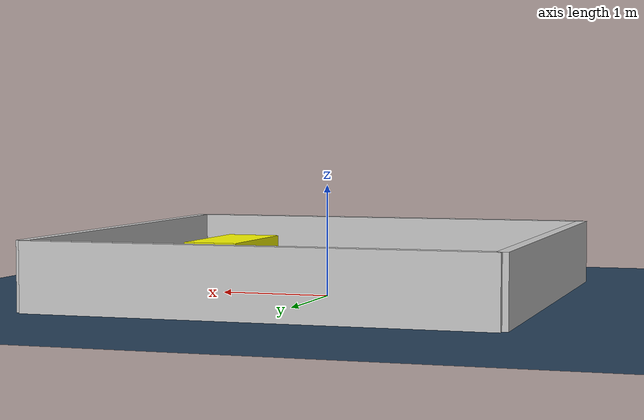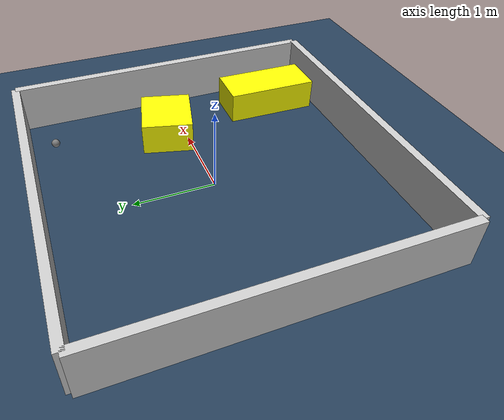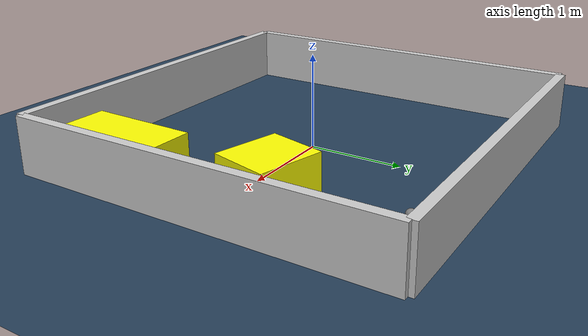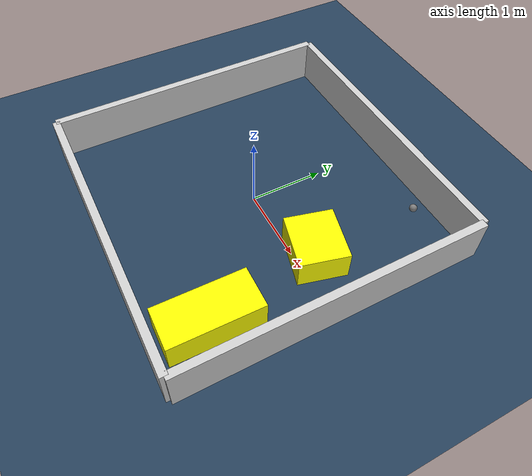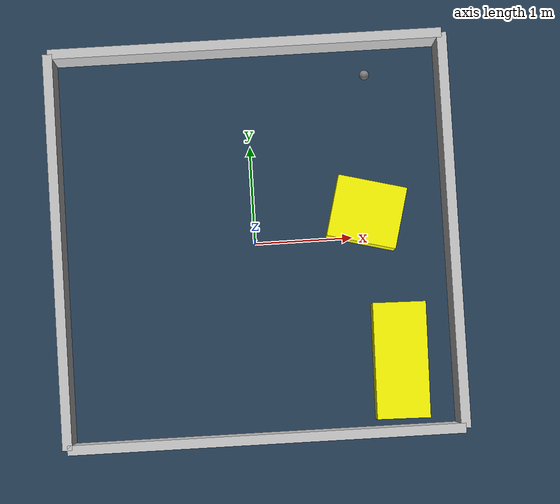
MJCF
<?xml version="1.0" ?>
<mujoco model="generated_environment">
  <option timestep="0.01" integrator="RK4" cone="elliptic"/>
  <default>
    <geom density="1"/>
  </default>
  <asset>
    <texture builtin="gradient" height="3072" rgb1="0.3 0.5 0.7" rgb2="0 0 0" type="skybox" width="512"/>
    <texture builtin="checker" height="300" mark="edge" markrgb="0.8 0.8 0.8" name="groundplane" rgb1="0.2 0.3 0.4" rgb2="0.1 0.2 0.3" type="2d" width="300"/>
    <material name="groundplane" reflectance="0.2" texrepeat="5 5" texture="groundplane" texuniform="true"/>
    <material name="robot" rgba="0.0 1.0 0.0 1"/>
  </asset>
  <worldbody>
    <light dir="0 0 -1" directional="true" pos="0 0 1.5"/>
    <geom condim="4" friction="1.0 0.005 0.001" material="groundplane" name="floor" size="0 0 0.05" type="plane"/>
    <body name="walls">
      <geom name="wall_1" condim="4" pos="-2.0 0.0 0.3" rgba="0.800000011920929 0.800000011920929 0.800000011920929 1.0" size="0.05 2.0 0.3" type="box"/>
      <geom name="wall_2" condim="4" pos="2.0 0.0 0.3" rgba="0.800000011920929 0.800000011920929 0.800000011920929 1.0" size="0.05 2.0 0.3" type="box"/>
      <geom name="wall_3" condim="4" pos="0.0 -2.0 0.3" rgba="0.800000011920929 0.800000011920929 0.800000011920929 1.0" size="2.0 0.05 0.3" type="box"/>
      <geom name="wall_4" condim="4" pos="0.0 2.0 0.3" rgba="0.800000011920929 0.800000011920929 0.800000011920929 1.0" size="2.0 0.05 0.3" type="box"/>
    </body>
    <body name="robot">
      <joint name="joint_x" type="slide" pos="0 0 0" axis="1 0 0"/>
      <joint name="joint_y" type="slide" pos="0 0 0" axis="0 1 0"/>
      <geom name="robot" type="sphere" pos="1.217957216704482 1.6620518958494164 0.2" size="0.05" mass="5." friction="1.0 0.005 0.0001" condim="4"/>
      <site name="sensor_ball"/>
    </body>
    <body name="obstacle_1_movable">
      <geom name="obstacle_1_movable" condim="4" pos="1.1521885170773682 0.2389484045691599 0.2" euler="0 0 255.62098252452495" friction="1.0 0.005 0.001" rgba="1 1 0 1" size="0.3165244006168866 0.3563886746881648 0.2" type="box" mass="0.1"/>
      <joint type="free"/>
    </body>
    <body name="obstacle_2_movable">
      <geom name="obstacle_2_movable" condim="4" pos="1.4102014297424144 -1.2876646024687477 0.2" euler="0 0 268.9830264011151" friction="1.0 0.005 0.001" rgba="1 1 0 1" size="0.5900488847009706 0.2702494594642233 0.2" type="box" mass="0.1"/>
      <joint type="free"/>
    </body>
  </worldbody>
  <actuator>
    <motor name="actuator_x" joint="joint_x" gear="1" ctrlrange="-1 1"/>
    <motor name="actuator_y" joint="joint_y" gear="1" ctrlrange="-1 1"/>
  </actuator>
</mujoco>
